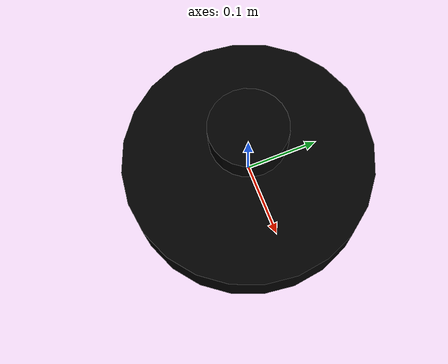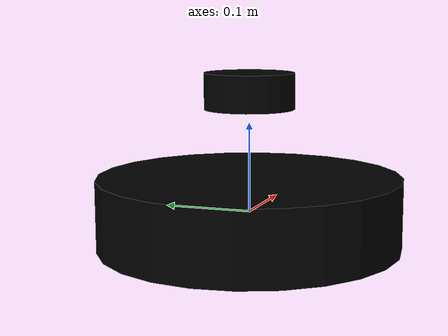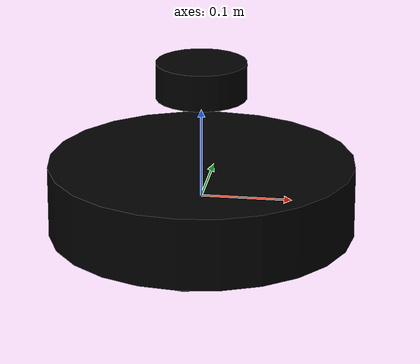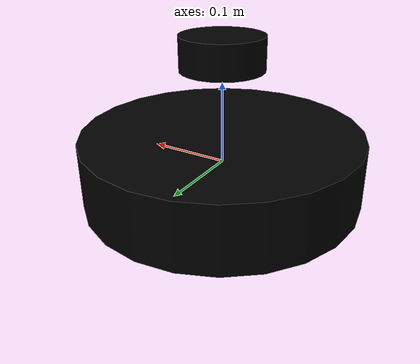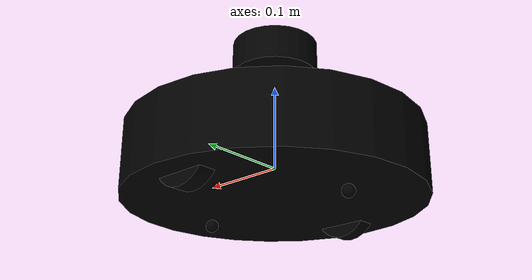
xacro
<?xml version="1.0"?>
<robot name="vacuum_bot" xmlns:xacro="http://ros.org/wiki/xacro">

  <xacro:property name="chassis_height" value="0.08"/>
  <xacro:property name="wheel_radius" value="0.0375"/>
  <xacro:property name="clearance" value="0.015"/>

  <xacro:macro name="cylinder_inertia" params="m r h">
    <inertial>
      <origin xyz="0 0 0" rpy="0 0 0" />
      <mass value="${m}" />
      <inertia ixx="${(m/12) * (3*r*r + h*h)}" ixy = "0" ixz = "0" iyy="${(m/12) * (3*r*r + h*h)}" iyz = "0" izz="${(m/2) * (r*r)}" />
    </inertial>
  </xacro:macro>

  <xacro:macro name="box_inertia" params="m x y z">
    <inertial>
      <origin xyz="0 0 0" rpy="0 0 0" />
      <mass value="${m}" />
      <inertia ixx="${(m/12) * (y*y + z*z)}" ixy="0" ixz="0" iyy="${(m/12) * (x*x + z*z)}" iyz="0" izz="${(m/12) * (x*x + y*y)}" />
    </inertial>
  </xacro:macro>

  <xacro:macro name="sphere_inertia" params="m r">
    <inertial>
      <mass value="${m}"/>
      <inertia ixx="${(2/5) * m * (r*r)}" ixy="0.0" ixz="0.0" iyy="${(2/5) * m * (r*r)}" iyz="0.0" izz="${(2/5) * m * (r*r)}"/>
    </inertial>
  </xacro:macro>

  <link name="base_footprint"></link>

  <joint name="base_joint" type="fixed">
    <parent link="base_footprint"/>
    <child link="base_link"/>
    <origin xyz="0 0 0" rpy="0 0 0"/>
  </joint>

  <link name="base_link">
    <visual>
      <geometry>
        <cylinder radius="0.17" length="${chassis_height}"/>
      </geometry>
      <material name="black">
          <color rgba="0 0 0 1"/>
      </material>
    </visual>

    <collision>
      <geometry>
        <cylinder radius="0.17" length="${chassis_height}"/>
      </geometry>
    </collision>

    <xacro:cylinder_inertia m="5.0" r="0.17" h="${chassis_height}"/>
  </link>

  <link name="left_wheel">
    <visual>
      <geometry>
        <cylinder radius="${wheel_radius}" length="0.02"/>
      </geometry>
      <material name="black"/>
    </visual>
    <collision>
      <geometry>
        <cylinder radius="${wheel_radius}" length="0.02"/>
      </geometry>
    </collision>
    <xacro:cylinder_inertia m="0.5" r="${wheel_radius}" h="0.02"/>
  </link>

  <joint name="left_wheel_joint" type="continuous">
    <parent link="base_link"/>
    <child link="left_wheel"/>
    <origin xyz="0 0.12875 -${chassis_height/2 + clearance - wheel_radius}" rpy="${pi/2} 0 0"/>
    <axis xyz="0 0 -1"/>
  </joint>

  <link name="right_wheel">
    <visual>
      <geometry>
        <cylinder radius="${wheel_radius}" length="0.02"/>
      </geometry>
      <material name="black"/>
    </visual>
    <collision>
      <geometry>
        <cylinder radius="${wheel_radius}" length="0.02"/>
      </geometry>
    </collision>
    <xacro:cylinder_inertia m="0.5" r="${wheel_radius}" h="0.02"/>
  </link>

  <joint name="right_wheel_joint" type="continuous">
    <parent link="base_link"/>
    <child link="right_wheel"/>
    <origin xyz="0 -0.12875 -${chassis_height/2 + clearance - wheel_radius}" rpy="${pi/2} 0 0"/>
    <axis xyz="0 0 -1"/>
  </joint>

  <!-- Caster Wheel -->
  <link name="caster_wheel">
    <visual>
      <geometry>
        <sphere radius="${clearance/2}"/>
      </geometry>
      <material name="black"/>
    </visual>
    <collision>
      <geometry>
         <sphere radius="${clearance/2}"/>
      </geometry>
    </collision>
    <xacro:sphere_inertia m="0.1" r="${clearance/2}"/>
  </link>

  <joint name="caster_wheel_joint" type="fixed">
    <parent link="base_link"/>
    <child link="caster_wheel"/>
    <origin xyz="0.1 0 -${chassis_height/2 + clearance/2}" rpy="0 0 0"/>
  </joint>

  <gazebo reference="caster_wheel">
    <mu1>0.0</mu1>
    <mu2>0.0</mu2>
  </gazebo>

  <!-- Rear Caster Wheel -->
  <link name="rear_caster_wheel">
    <visual>
      <geometry>
        <sphere radius="${clearance/2}"/>
      </geometry>
      <material name="black"/>
    </visual>
    <collision>
      <geometry>
         <sphere radius="${clearance/2}"/>
      </geometry>
    </collision>
    <xacro:sphere_inertia m="0.1" r="${clearance/2}"/>
  </link>

  <joint name="rear_caster_wheel_joint" type="fixed">
    <parent link="base_link"/>
    <child link="rear_caster_wheel"/>
    <origin xyz="-0.1 0 -${chassis_height/2 + clearance/2}" rpy="0 0 0"/>
  </joint>

  <gazebo reference="rear_caster_wheel">
    <mu1>0.0</mu1>
    <mu2>0.0</mu2>
  </gazebo>

  <!-- Gazebo Sim (Harmonic) Diff Drive Plugin -->
  <gazebo>
    <plugin
      filename="gz-sim-diff-drive-system"
      name="gz::sim::systems::DiffDrive">
      <left_joint>left_wheel_joint</left_joint>
      <right_joint>right_wheel_joint</right_joint>
      <wheel_separation>0.2575</wheel_separation>
      <wheel_radius>0.0375</wheel_radius>
      <topic>cmd_vel</topic>
      <odom_topic>odom</odom_topic>
      <tf_topic>tf</tf_topic>
      <frame_id>odom</frame_id>
      <child_frame_id>base_footprint</child_frame_id>
    </plugin>

    <!-- Joint State Publisher for wheel TFs -->
    <plugin
      filename="gz-sim-joint-state-publisher-system"
      name="gz::sim::systems::JointStatePublisher">
      <topic>joint_states</topic>
    </plugin>
  </gazebo>

  <link name="laser_frame">
    <visual>
        <geometry>
            <cylinder radius="0.05" length="0.04"/>
        </geometry>
        <material name="black"/>
    </visual>
    <collision>
        <geometry>
            <cylinder radius="0.05" length="0.04"/>
        </geometry>
    </collision>
    <xacro:cylinder_inertia m="0.1" r="0.05" h="0.04"/>
  </link>

  <joint name="scan_joint" type="fixed">
    <parent link="base_link"/>
    <child link="laser_frame"/>
    <origin xyz="0 0 0.135" rpy="0 0 ${pi}"/>
  </joint>

  <!-- Gazebo Sim Laser Sensor -->
  <gazebo reference="laser_frame">
    <sensor name="lidar" type="gpu_lidar">
      <pose>0 0 0 0 0 0</pose>
      <frame_id>laser_frame</frame_id>
      <ignition_frame_id>laser_frame</ignition_frame_id>
      <always_on>true</always_on>
      <visualize>true</visualize>
      <update_rate>10</update_rate>
      <topic>scan</topic>
      <ray>
        <scan>
          <horizontal>
            <samples>360</samples>
            <resolution>1</resolution>
            <min_angle>0.000000</min_angle>
            <max_angle>6.283185</max_angle>
          </horizontal>
        </scan>
        <range>
          <min>0.150000</min>
          <max>12.0</max>
          <resolution>0.005</resolution>
        </range>
      </ray>
    </sensor>
  </gazebo>

</robot>
